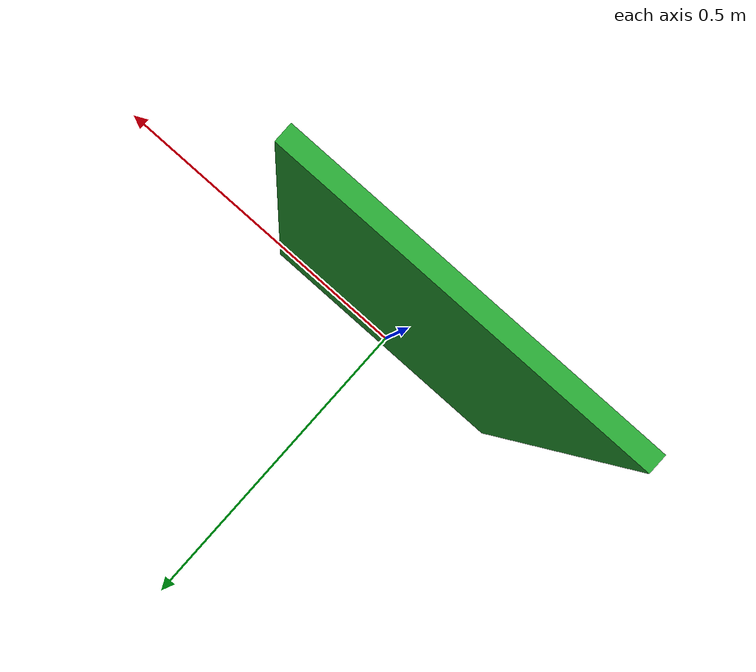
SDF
<?xml version="1.0" ?>
<sdf version="1.6">
  <model name="green_box">
    <static>true</static>
    <link name="box">
      <pose>0 0 0.60 0 0 0</pose>
      <collision name="collision">
        <geometry>
          <box>
            <size>0.40 0.020 1.20</size>
          </box>
        </geometry>
      </collision>
      <visual name="visual">
        <geometry>
          <box>
            <size>0.40 0.020 1.20</size>
          </box>
        </geometry>
        <material>
          <script>
            <uri>model://green_box/materials/scripts</uri>
            <uri>model://green_box/materials/textures</uri>
            <name>green_box</name>
          </script>
        </material>
      </visual>
    </link>
  </model>
</sdf>
